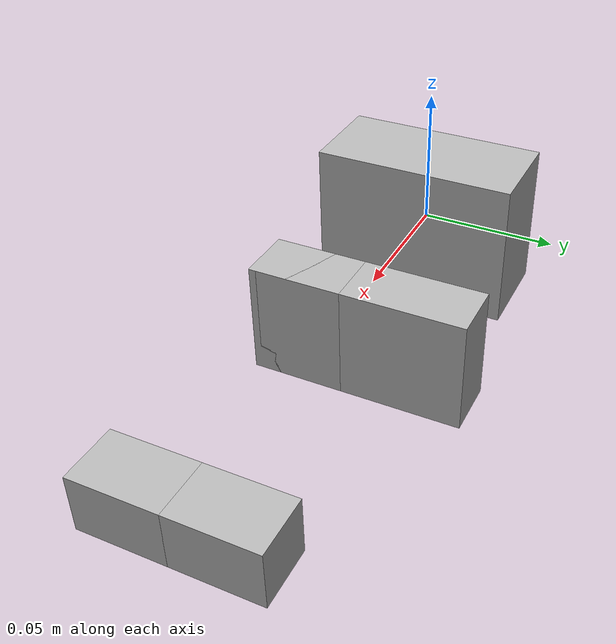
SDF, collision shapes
<?xml version="1.0" ?>
<sdf version="1.5">
  <model name="two_fingers_gripper">
    <plugin
        filename="ignition-gazebo-joint-position-controller-system"
        name="ignition::gazebo::systems::JointPositionController">
        <joint_name>r_gripper_l_finger_joint</joint_name>
        <topic>/model/drone0/joint/r_gripper_l_finger_joint/cmd_pos</topic>
    </plugin>
    <plugin
        filename="ignition-gazebo-joint-position-controller-system"
        name="ignition::gazebo::systems::JointPositionController">
        <joint_name>r_gripper_r_finger_joint</joint_name>
        <topic>/model/drone0/joint/r_gripper_r_finger_joint/cmd_pos</topic>
  </plugin>
      <plugin filename="ignition-gazebo-pose-publisher-system"
          name="ignition::gazebo::systems::PosePublisher">
          <publish_link_pose>true</publish_link_pose>
          <publish_visual_pose>false</publish_visual_pose>
          <publish_nested_model_pose>true</publish_nested_model_pose>
          <publish_model_pose>true</publish_model_pose>
          <use_pose_vector_msg>true</use_pose_vector_msg>
          <static_publisher>false</static_publisher>
          <update_frequency>100</update_frequency>
      </plugin>
    <link name="r_wrist_roll_link">
      <pose>0.0 0.0 0.0 0.000000 -0.000000 0.000000</pose>
      <inertial>
        <pose>0.056408 0.000451 -0.001014 0.000000 -0.000000 0.000000</pose>
        <inertia>
          <ixx>0.011352</ixx>
          <ixy>-0.000016</ixy>
          <ixz>-0.000001</ixz>
          <iyy>0.011677</iyy>
          <iyz>-0.000001</iyz>
          <izz>0.011866</izz>
        </inertia>
        <mass>0.002</mass>
      </inertial>
      <collision name="r_wrist_roll_link_geom">
        <pose>0.000000 0.000000 0.000000 0.000000 -0.000000 0.000000</pose>
        <geometry>
          <box>
            <size>0.035 0.075 0.055</size>
          </box>
        </geometry>
        <surface>
          <friction>
            <ode>
              <mu>0.000000</mu>
              <mu2>0.000000</mu2>
              <fdir1>0.000000 0.000000 0.000000</fdir1>
              <slip1>0.000000</slip1>
              <slip2>0.000000</slip2>
            </ode>
          </friction>
          <bounce>
            <restitution_coefficient>0.000000</restitution_coefficient>
            <threshold>100000.000000</threshold>
          </bounce>
          <contact>
            <ode>
              <soft_cfm>0.000000</soft_cfm>
              <soft_erp>0.200000</soft_erp>
              <kp>1000000000000.000000</kp>
              <kd>1.000000</kd>
              <max_vel>0.000000</max_vel>
              <min_depth>0.001000</min_depth>
            </ode>
          </contact>
        </surface>
        <laser_retro>0.000000</laser_retro>
      </collision>
      <visual name="r_wrist_roll_link_geom_visual">
        <pose>0.000000 0.000000 0.000000 0.000000 -0.000000 0.000000</pose>
        <geometry>
          <mesh>
            <uri>model://two_fingers_gripper/meshes/forearm_v0/wrist_roll.stl</uri>
            <scale>1.000000 1.000000 1.000000</scale>
            <uri>__default__</uri>
          </mesh>
        </geometry>
        <material>
          <script>
            <name>"texture"</name>
          <uri>
            model: //materials/textures
            </uri>
          </script>
        </material>
        <cast_shadows>1</cast_shadows>
        <laser_retro>0.000000</laser_retro>
        <transparency>0.000000</transparency>
      </visual>
      <visual name="r_wrist_roll_link_geom_r_gripper_palm_link_visual">
        <pose>0.000000 0.000000 0.000000 0.000000 -0.000000 0.000000</pose>
        <geometry>
          <mesh>
            <uri>model://two_fingers_gripper/meshes/gripper_v0/gripper_palm.dae</uri>
            <scale>1.000000 1.000000 1.000000</scale>
            <uri>__default__</uri>
          </mesh>
        </geometry>
        <cast_shadows>1</cast_shadows>
        <laser_retro>0.000000</laser_retro>
        <transparency>0.000000</transparency>
      </visual>
      <gravity>1</gravity>
      <self_collide>0</self_collide>
      <kinematic>0</kinematic>
      <velocity_decay />
    </link>
    <link name="r_gripper_l_finger_link">
      <pose>0.07691 0.01 0.0 0.000000 -0.000000 0.000000</pose>
      <inertial>
        <pose>0.035980 0.017300 -0.001640 0.000000 -0.000000 0.000000</pose>
        <inertia>
          <ixx>0.000078</ixx>
          <ixy>0.000001</ixy>
          <ixz>-0.000010</ixz>
          <iyy>0.000197</iyy>
          <iyz>-0.000003</iyz>
          <izz>0.000181</izz>
        </inertia>
        <mass>0.0001</mass>
      </inertial>
      <collision name="r_gripper_l_finger_link_geom">
        <pose>0.000000 0.000000 0.000000 0.000000 -0.000000 0.000000</pose>
        <geometry>
            <box>
            <size>0.02 0.075 0.04</size>
          </box>
        </geometry>
        <surface>
          <friction>
            <ode>
              <mu>500.000000</mu>
              <mu2>500.000000</mu2>
              <fdir1>0.000000 0.000000 0.000000</fdir1>
              <slip1>0.000000</slip1>
              <slip2>0.000000</slip2>
            </ode>
          </friction>
          <bounce>
            <restitution_coefficient>0.000000</restitution_coefficient>
            <threshold>100000.000000</threshold>
          </bounce>
          <contact>
            <ode>
              <soft_cfm>0.000000</soft_cfm>
              <soft_erp>0.200000</soft_erp>
              <kp>1000000.000000</kp>
              <kd>1.000000</kd>
              <max_vel>0.000000</max_vel>
              <min_depth>0.001000</min_depth>
            </ode>
          </contact>
        </surface>
        <laser_retro>0.000000</laser_retro>
      </collision>
      <visual name="r_gripper_l_finger_link_geom_visual">
        <pose>0.000000 0.000000 0.000000 0.000000 -0.000000 0.000000</pose>
        <geometry>
          <mesh>
            <uri>model://two_fingers_gripper/meshes/gripper_v0/l_finger.dae</uri>
            <scale>1.000000 1.000000 1.000000</scale>
            <uri>__default__</uri>
          </mesh>
        </geometry>
        <cast_shadows>1</cast_shadows>
        <laser_retro>0.000000</laser_retro>
        <transparency>0.000000</transparency>
      </visual>
      <gravity>1</gravity>
      <self_collide>0</self_collide>
      <kinematic>0</kinematic>
      <velocity_decay />
    </link>
    <link name="r_gripper_l_finger_tip_link">
      <pose>0.16828 0.01495 0.0 0.000000 -0.000000 0.000000</pose>
      <inertial>
        <pose>0.004230 0.002840 0.000000 0.000000 -0.000000 0.000000</pose>
        <inertia>
          <ixx>0.000008</ixx>
          <ixy>0.000006</ixy>
          <ixz>0.000000</ixz>
          <iyy>0.000010</iyy>
          <iyz>0.000000</iyz>
          <izz>0.000015</izz>
        </inertia>
        <mass>0.001</mass>
      </inertial>
      <collision name="r_gripper_l_finger_tip_link_geom">
        <pose>0.000000 0.000000 0.000000 0.000000 -0.000000 0.000000</pose>
        <geometry>
          <box>
              <size>0.02 0.03 0.02</size>
          </box>
        </geometry>
        <surface>
          <friction>
            <ode>
              <mu>500.000000</mu>
              <mu2>500.000000</mu2>
              <fdir1>0.000000 0.000000 0.000000</fdir1>
              <slip1>0.000000</slip1>
              <slip2>0.000000</slip2>
            </ode>
          </friction>
          <bounce>
            <restitution_coefficient>0.000000</restitution_coefficient>
            <threshold>100000.000000</threshold>
          </bounce>
          <contact>
            <ode>
              <soft_cfm>0.000000</soft_cfm>
              <soft_erp>0.200000</soft_erp>
              <kp>10000000.000000</kp>
              <kd>1.000000</kd>
              <max_vel>0.000000</max_vel>
              <min_depth>0.001000</min_depth>
            </ode>
          </contact>
        </surface>
        <laser_retro>0.000000</laser_retro>
      </collision>
      <visual name="r_gripper_l_finger_tip_link_geom_visual">
        <pose>0.000000 0.000000 0.000000 0.000000 -0.000000 0.000000</pose>
        <geometry>
          <mesh>
            <uri>model://two_fingers_gripper/meshes/gripper_v0/l_finger_tip.dae</uri>
            <scale>1.000000 1.000000 1.000000</scale>
            <uri>__default__</uri>
          </mesh>
        </geometry>
        <cast_shadows>1</cast_shadows>
        <laser_retro>0.000000</laser_retro>
        <transparency>0.000000</transparency>
      </visual>
      <sensor name="r_gripper_l_finger_tip_contact_sensor" type="contact">
        <pose>0.000000 0.000000 0.000000 0.000000 -0.000000 0.000000</pose>
        <contact>
          <collision>r_gripper_l_finger_tip_link_geom</collision>
          <topic>__default_topic__</topic>
        </contact>
        <always_on>0</always_on>
        <update_rate>100.000000</update_rate>
        <visualize>0</visualize>
      </sensor>
      <gravity>1</gravity>
      <self_collide>0</self_collide>
      <kinematic>0</kinematic>
      <velocity_decay />
    </link>
    <link name="r_gripper_r_finger_link">
      <pose>0.07691 -0.01 0.0 0.000000 -0.000000 0.000000</pose>
      <inertial>
        <pose>0.035760 -0.017360 -0.000950 0.000000 -0.000000 0.000000</pose>
        <inertia>
          <ixx>0.000077</ixx>
          <ixy>-0.000002</ixy>
          <ixz>-0.000008</ixz>
          <iyy>0.000198</iyy>
          <iyz>0.000002</iyz>
          <izz>0.000181</izz>
        </inertia>
        <mass>0.0001</mass>
      </inertial>
      <collision name="r_gripper_r_finger_link_geom">
        <pose>0.000000 0.000000 0.000000 -3.141590 -0.000000 0.000000</pose>
        <geometry>
          <box>
              <size>0.02 0.03 0.04</size>
          </box>
        </geometry>
        <surface>
          <friction>
            <ode>
              <mu>500.000000</mu>
              <mu2>500.000000</mu2>
              <fdir1>0.000000 0.000000 0.000000</fdir1>
              <slip1>0.000000</slip1>
              <slip2>0.000000</slip2>
            </ode>
          </friction>
          <bounce>
            <restitution_coefficient>0.000000</restitution_coefficient>
            <threshold>100000.000000</threshold>
          </bounce>
          <contact>
            <ode>
              <soft_cfm>0.000000</soft_cfm>
              <soft_erp>0.200000</soft_erp>
              <kp>1000000.000000</kp>
              <kd>1.000000</kd>
              <max_vel>0.000000</max_vel>
              <min_depth>0.001000</min_depth>
            </ode>
          </contact>
        </surface>
        <laser_retro>0.000000</laser_retro>
      </collision>
      <visual name="r_gripper_r_finger_link_geom_visual">
        <pose>0.000000 0.000000 0.000000 -3.141590 0.000000 0.000000</pose>
        <geometry>
          <mesh>
            <uri>model://two_fingers_gripper/meshes/gripper_v0/l_finger.dae</uri>
            <scale>1.000000 1.000000 1.000000</scale>
            <uri>__default__</uri>
          </mesh>
        </geometry>
        <cast_shadows>1</cast_shadows>
        <laser_retro>0.000000</laser_retro>
        <transparency>0.000000</transparency>
      </visual>
      <gravity>1</gravity>
      <self_collide>0</self_collide>
      <kinematic>0</kinematic>
      <velocity_decay />
    </link>
    <link name="r_gripper_r_finger_tip_link">
      <pose>0.16828 -0.01495 0.0 0.000000 -0.000000 0.000000</pose>
      <inertial>
        <pose>0.004230 -0.002840 0.000000 0.000000 -0.000000 0.000000</pose>
        <inertia>
          <ixx>0.000008</ixx>
          <ixy>-0.000006</ixy>
          <ixz>0.000000</ixz>
          <iyy>0.000010</iyy>
          <iyz>0.000000</iyz>
          <izz>0.000015</izz>
        </inertia>
        <mass>0.0001</mass>
      </inertial>
      <collision name="r_gripper_r_finger_tip_link_geom">
        <pose>0.000000 0.000000 0.000000 -3.141590 -0.000000 0.000000</pose>
        <geometry>
           <box>
              <size>0.02 0.03 0.02</size>
          </box>
        </geometry>
        <surface>
          <friction>
            <ode>
              <mu>500.000000</mu>
              <mu2>500.000000</mu2>
              <fdir1>0.000000 0.000000 0.000000</fdir1>
              <slip1>0.000000</slip1>
              <slip2>0.000000</slip2>
            </ode>
          </friction>
          <bounce>
            <restitution_coefficient>0.000000</restitution_coefficient>
            <threshold>100000.000000</threshold>
          </bounce>
          <contact>
            <ode>
              <soft_cfm>0.000000</soft_cfm>
              <soft_erp>0.200000</soft_erp>
              <kp>10000000.000000</kp>
              <kd>1.000000</kd>
              <max_vel>0.000000</max_vel>
              <min_depth>0.001000</min_depth>
            </ode>
          </contact>
        </surface>
        <laser_retro>0.000000</laser_retro>
      </collision>
      <visual name="r_gripper_r_finger_tip_link_geom_visual">
        <pose>0.000000 0.000000 0.000000 -3.141590 0.000000 0.000000</pose>
        <geometry>
          <mesh>
            <uri>model://two_fingers_gripper/meshes/gripper_v0/l_finger_tip.dae</uri>
            <scale>1.000000 1.000000 1.000000</scale>
            <uri>__default__</uri>
          </mesh>
        </geometry>
        <cast_shadows>1</cast_shadows>
        <laser_retro>0.000000</laser_retro>
        <transparency>0.000000</transparency>
      </visual>
      <sensor name="r_gripper_r_finger_tip_contact_sensor" type="contact">
        <pose>0.000000 0.000000 0.000000 0.000000 -0.000000 0.000000</pose>
        <contact>
          <collision>r_gripper_r_finger_tip_link_geom</collision>
          <topic>__default_topic__</topic>
        </contact>
        <always_on>0</always_on>
        <update_rate>100.000000</update_rate>
        <visualize>0</visualize>
      </sensor>
      <gravity>1</gravity>
      <self_collide>0</self_collide>
      <kinematic>0</kinematic>
      <velocity_decay />
    </link>
    <joint name="r_gripper_l_finger_joint" type="revolute">
      <pose>0.000000 0.000000 0.000000 0.000000 -0.000000 0.000000</pose>
      <parent>r_wrist_roll_link</parent>
      <child>r_gripper_l_finger_link</child>
    </joint>
    <joint name="r_gripper_l_finger_tip_joint" type="fixed">
      <pose>0.000000 0.000000 0.000000 0.000000 -0.000000 0.000000</pose>
      <parent>r_gripper_l_finger_link</parent>
      <child>r_gripper_l_finger_tip_link</child>
    </joint>
    <joint name="r_gripper_r_finger_joint" type="revolute">
      <pose>0.000000 0.000000 0.000000 0.000000 -0.000000 0.000000</pose>
      <parent>r_wrist_roll_link</parent>
      <child>r_gripper_r_finger_link</child>
    </joint>
    <joint name="r_gripper_r_finger_tip_joint" type="fixed">
      <pose>0.000000 0.000000 0.000000 0.000000 -0.000000 0.000000</pose>
      <parent>r_gripper_r_finger_link</parent>
      <child>r_gripper_r_finger_tip_link</child>
    </joint>

  </model>
</sdf>
